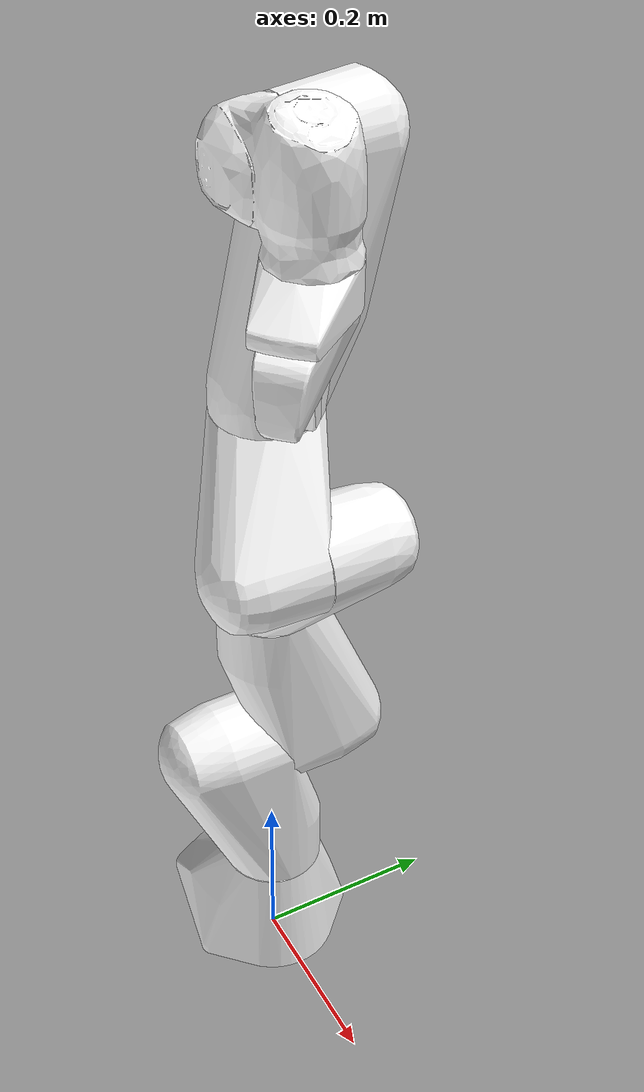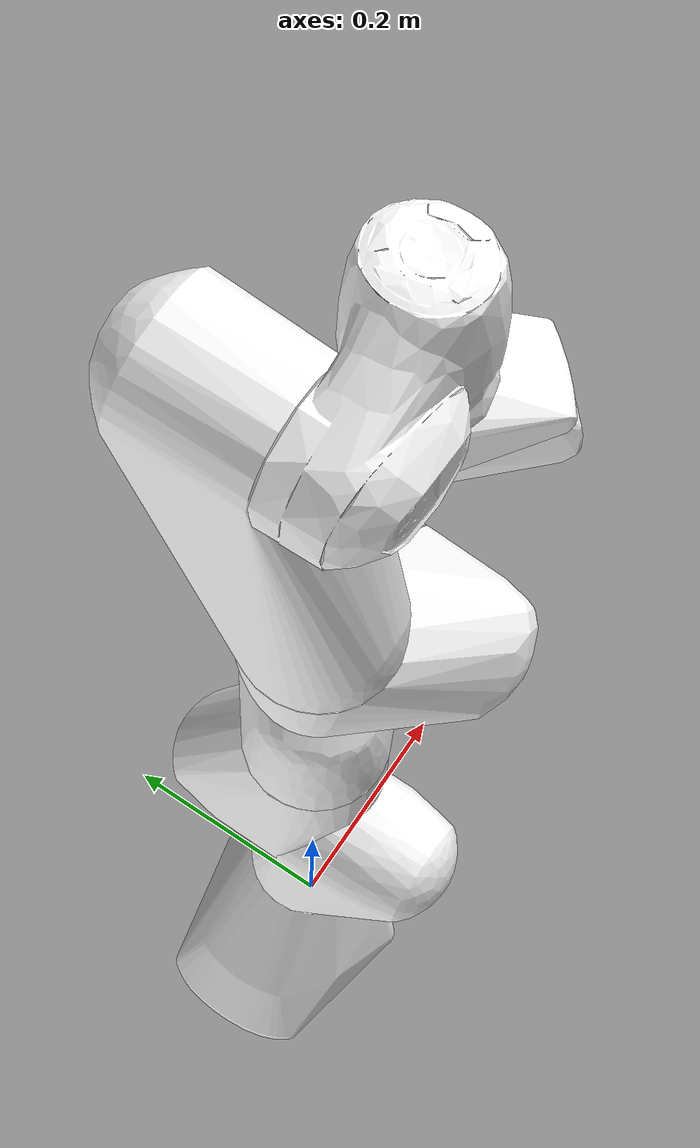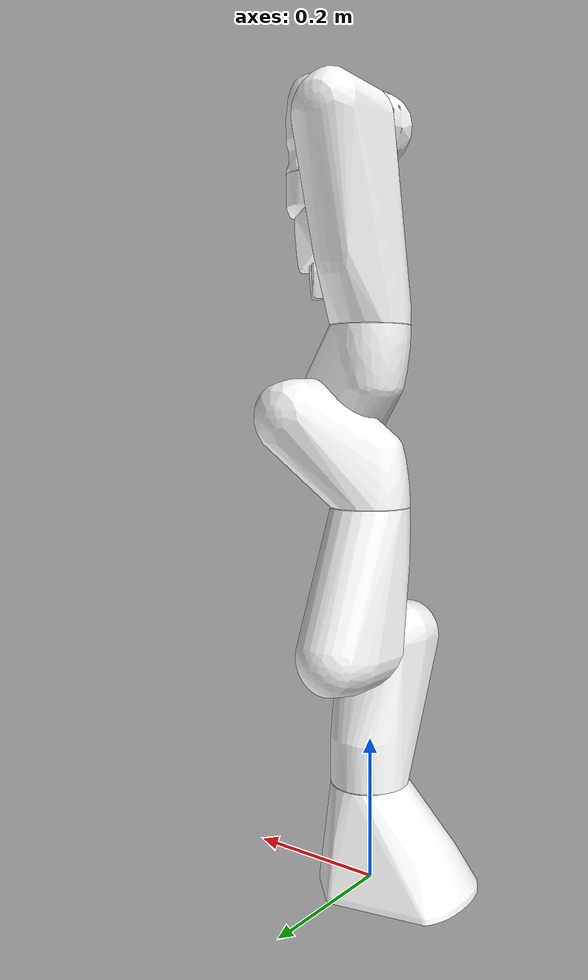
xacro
<?xml version="1.0"?>
<robot xmlns:xacro="http://www.ros.org/wiki/xacro" name="panda">

  <!-- Include Franka description -->
  <xacro:include filename="$(find franka_description)/robots/panda/panda.urdf.xacro"/>

  <!-- Gazebo ros2_control plugin -->
  <gazebo>
    <plugin filename="gz_ros2_control-system" name="gz_ros2_control::GazeboSimROS2ControlPlugin">
      <robot_param>robot_description</robot_param>
      <robot_param_node>robot_state_publisher</robot_param_node>
      <parameters>$(find panda_gz_moveit)/config/panda_controllers.yaml</parameters>
    </plugin>
  </gazebo>

  <!-- ros2_control -->
  <ros2_control name="panda_gz" type="system">
    <hardware>
      <plugin>gz_ros2_control/GazeboSimSystem</plugin>
    </hardware>

    <!-- Arm joints -->
    <joint name="panda_joint1">
      <command_interface name="position"/>
      <state_interface name="position">
        <param name="initial_value">0.0</param>
      </state_interface>
      <state_interface name="velocity"/>
    </joint>

    <joint name="panda_joint2">
      <command_interface name="position"/>
      <state_interface name="position">
        <param name="initial_value">-0.785</param>
      </state_interface>
      <state_interface name="velocity"/>
    </joint>

    <joint name="panda_joint3">
      <command_interface name="position"/>
      <state_interface name="position">
        <param name="initial_value">0.0</param>
      </state_interface>
      <state_interface name="velocity"/>
    </joint>

    <joint name="panda_joint4">
      <command_interface name="position"/>
      <state_interface name="position">
        <param name="initial_value">-2.356</param>
      </state_interface>
      <state_interface name="velocity"/>
    </joint>

    <joint name="panda_joint5">
      <command_interface name="position"/>
      <state_interface name="position">
        <param name="initial_value">0.0</param>
      </state_interface>
      <state_interface name="velocity"/>
    </joint>

    <joint name="panda_joint6">
      <command_interface name="position"/>
      <state_interface name="position">
        <param name="initial_value">1.571</param>
      </state_interface>
      <state_interface name="velocity"/>
    </joint>

    <joint name="panda_joint7">
      <command_interface name="position"/>
      <state_interface name="position">
        <param name="initial_value">0.785</param>
      </state_interface>
      <state_interface name="velocity"/>
    </joint>

    <!-- Gripper joints -->
    <joint name="panda_finger_joint1">
      <command_interface name="position"/>
      <state_interface name="position">
        <param name="initial_value">0.04</param>
      </state_interface>
      <state_interface name="velocity"/>
    </joint>

    <joint name="panda_finger_joint2">
      <command_interface name="position"/>
      <state_interface name="position">
        <param name="initial_value">0.04</param>
      </state_interface>
      <state_interface name="velocity"/>
    </joint>

  </ros2_control>

  <!-- Gazebo materials for visualization -->
  <gazebo reference="panda_link0">
    <material>Gazebo/White</material>
  </gazebo>

  <gazebo reference="panda_link1">
    <material>Gazebo/White</material>
  </gazebo>

  <gazebo reference="panda_link2">
    <material>Gazebo/White</material>
  </gazebo>

  <gazebo reference="panda_link3">
    <material>Gazebo/White</material>
  </gazebo>

  <gazebo reference="panda_link4">
    <material>Gazebo/White</material>
  </gazebo>

  <gazebo reference="panda_link5">
    <material>Gazebo/White</material>
  </gazebo>

  <gazebo reference="panda_link6">
    <material>Gazebo/Orange</material>
  </gazebo>

  <gazebo reference="panda_link7">
    <material>Gazebo/White</material>
  </gazebo>

  <gazebo reference="panda_hand">
    <material>Gazebo/Grey</material>
  </gazebo>

</robot>

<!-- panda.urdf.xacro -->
<robot xmlns:xacro="http://www.ros.org/wiki/xacro" name="panda">
    <xacro:arg name="initial_positions_file" default="initial_positions.yaml" />

    <!-- Import panda urdf file -->
    <xacro:include filename="$(find panda_gz_moveit)/urdf/panda_arm.urdf" />

    <!-- Import control_xacro -->
    <xacro:include filename="panda.ros2_control.xacro" />

    <xacro:panda_ros2_control name="FakeSystem" initial_positions_file="$(arg initial_positions_file)"/>

</robot>

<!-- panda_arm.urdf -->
<robot name="panda">
<link name="world"/>

<joint name="world_to_panda" type="fixed">
  <parent link="world"/>
  <child link="panda_link0"/>
  <origin xyz="0 0 0" rpy="0 0 0"/>
</joint>

  <link name="panda_link0">
    <inertial>
      <mass value="100.0" />
      <origin xyz="0 0 -0.05" rpy="0 0 0" />
      <inertia ixx="1.0" ixy="0" ixz="0" iyy="1.0" iyz="0" izz="1.0" />
    </inertial>
    <visual>
      <geometry>
        <mesh filename="file:///workspace/install/panda_gz_moveit/share/panda_gz_moveit/meshes/collision/link0.obj" />
      </geometry>
      <material name="panda_white" />
    </visual>
    <collision>
      <geometry>
        <mesh filename="file:///workspace/install/panda_gz_moveit/share/panda_gz_moveit/meshes/collision/link0.obj" />
      </geometry>
      <material name="panda_white" />
      <surface>
        <friction>
          <ode>
            <mu>100.0</mu>
            <mu2>100.0</mu2>
          </ode>
        </friction>
      </surface>
    </collision>
  </link>

  <link name="panda_link1">
    <inertial><mass value="4.0" /><origin xyz="0 0 0" rpy="0 0 0" /><inertia ixx="0.01" ixy="0" ixz="0" iyy="0.01" iyz="0" izz="0.01" /></inertial>
    <visual>
      <geometry>
        <mesh filename="file:///workspace/install/panda_gz_moveit/share/panda_gz_moveit/meshes/collision/link1.obj" />
      </geometry>
      <material name="panda_white" />
    </visual>
    <collision>
      <geometry>
        <mesh filename="file:///workspace/install/panda_gz_moveit/share/panda_gz_moveit/meshes/collision/link1.obj" />
      </geometry>
      <material name="panda_white" />
    </collision>
  </link>

  <joint name="panda_joint1" type="revolute">
    <safety_controller k_position="100.0" k_velocity="40.0" soft_lower_limit="-2.8973" soft_upper_limit="2.8973" />
    <origin rpy="0 0 0" xyz="0 0 0.333" />
    <parent link="panda_link0" />
    <child link="panda_link1" />
    <axis xyz="0 0 1" />
    <limit effort="87" lower="-2.9671" upper="2.9671" velocity="2.1750" />
    <dynamics damping="10.0" friction="1.0"/>
  </joint>

  <link name="panda_link2">
    <inertial><mass value="4.0" /><origin xyz="0 0 0" rpy="0 0 0" /><inertia ixx="0.01" ixy="0" ixz="0" iyy="0.01" iyz="0" izz="0.01" /></inertial>
    <visual>
      <geometry>
        <mesh filename="file:///workspace/install/panda_gz_moveit/share/panda_gz_moveit/meshes/collision/link2.obj" />
      </geometry>
      <material name="panda_white" />
    </visual>
    <collision>
      <geometry>
        <mesh filename="file:///workspace/install/panda_gz_moveit/share/panda_gz_moveit/meshes/collision/link2.obj" />
      </geometry>
      <material name="panda_white" />
    </collision>
  </link>

  <joint name="panda_joint2" type="revolute">
    <safety_controller k_position="100.0" k_velocity="40.0" soft_lower_limit="-1.7628" soft_upper_limit="1.7628" />
    <origin rpy="-1.57079632679 0 0" xyz="0 0 0" />
    <parent link="panda_link1" />
    <child link="panda_link2" />
    <axis xyz="0 0 1" />
    <limit effort="87" lower="-1.8326" upper="1.8326" velocity="2.1750" />
    <dynamics damping="10.0" friction="1.0"/>
  </joint>

  <link name="panda_link3">
    <inertial><mass value="3.0" /><origin xyz="0 0 0" rpy="0 0 0" /><inertia ixx="0.01" ixy="0" ixz="0" iyy="0.01" iyz="0" izz="0.01" /></inertial>
    <visual>
      <geometry>
        <mesh filename="file:///workspace/install/panda_gz_moveit/share/panda_gz_moveit/meshes/collision/link3.obj" />
      </geometry>
      <material name="panda_white" />
    </visual>
    <collision>
      <geometry>
        <mesh filename="file:///workspace/install/panda_gz_moveit/share/panda_gz_moveit/meshes/collision/link3.obj" />
      </geometry>
      <material name="panda_white" />
    </collision>
  </link>

  <joint name="panda_joint3" type="revolute">
    <safety_controller k_position="100.0" k_velocity="40.0" soft_lower_limit="-2.8973" soft_upper_limit="2.8973" />
    <origin rpy="1.57079632679 0 0" xyz="0 -0.316 0" />
    <parent link="panda_link2" />
    <child link="panda_link3" />
    <axis xyz="0 0 1" />
    <limit effort="87" lower="-2.9671" upper="2.9671" velocity="2.1750" />
    <dynamics damping="10.0" friction="1.0"/>
  </joint>

  <link name="panda_link4">
    <inertial><mass value="3.0" /><origin xyz="0 0 0" rpy="0 0 0" /><inertia ixx="0.01" ixy="0" ixz="0" iyy="0.01" iyz="0" izz="0.01" /></inertial>
    <visual>
      <geometry>
        <mesh filename="file:///workspace/install/panda_gz_moveit/share/panda_gz_moveit/meshes/collision/link4.obj" />
      </geometry>
      <material name="panda_white" />
    </visual>
    <collision>
      <geometry>
        <mesh filename="file:///workspace/install/panda_gz_moveit/share/panda_gz_moveit/meshes/collision/link4.obj" />
      </geometry>
      <material name="panda_white" />
    </collision>
  </link>

  <joint name="panda_joint4" type="revolute">
    <safety_controller k_position="100.0" k_velocity="40.0" soft_lower_limit="-3.0718" soft_upper_limit="-0.0698" />
    <origin rpy="1.57079632679 0 0" xyz="0.0825 0 0" />
    <parent link="panda_link3" />
    <child link="panda_link4" />
    <axis xyz="0 0 1" />
    <limit effort="87" lower="-3.1416" upper="0.0" velocity="2.1750" />
    <dynamics damping="10.0" friction="1.0"/>
  </joint>

  <link name="panda_link5">
    <inertial><mass value="2.0" /><origin xyz="0 0 0" rpy="0 0 0" /><inertia ixx="0.01" ixy="0" ixz="0" iyy="0.01" iyz="0" izz="0.01" /></inertial>
    <visual>
      <geometry>
        <mesh filename="file:///workspace/install/panda_gz_moveit/share/panda_gz_moveit/meshes/collision/link5.obj" />
      </geometry>
      <material name="panda_white" />
    </visual>
    <collision>
      <geometry>
        <mesh filename="file:///workspace/install/panda_gz_moveit/share/panda_gz_moveit/meshes/collision/link5.obj" />
      </geometry>
      <material name="panda_white" />
    </collision>
  </link>

  <joint name="panda_joint5" type="revolute">
    <safety_controller k_position="100.0" k_velocity="40.0" soft_lower_limit="-2.8973" soft_upper_limit="2.8973" />
    <origin rpy="-1.57079632679 0 0" xyz="-0.0825 0.384 0" />
    <parent link="panda_link4" />
    <child link="panda_link5" />
    <axis xyz="0 0 1" />
    <limit effort="12" lower="-2.9671" upper="2.9671" velocity="2.6100" />
    <dynamics damping="10.0" friction="1.0"/>
  </joint>

  <link name="panda_link6">
    <inertial><mass value="2.0" /><origin xyz="0 0 0" rpy="0 0 0" /><inertia ixx="0.01" ixy="0" ixz="0" iyy="0.01" iyz="0" izz="0.01" /></inertial>
    <visual>
      <geometry>
        <mesh filename="file:///workspace/install/panda_gz_moveit/share/panda_gz_moveit/meshes/collision/link6.obj" />
      </geometry>
      <material name="panda_white" />
    </visual>
    <collision>
      <geometry>
        <mesh filename="file:///workspace/install/panda_gz_moveit/share/panda_gz_moveit/meshes/collision/link6.obj" />
      </geometry>
      <material name="panda_white" />
    </collision>
  </link>

  <joint name="panda_joint6" type="revolute">
    <safety_controller k_position="100.0" k_velocity="40.0" soft_lower_limit="-0.0175" soft_upper_limit="3.7525" />
    <origin rpy="1.57079632679 0 0" xyz="0 0 0" />
    <parent link="panda_link5" />
    <child link="panda_link6" />
    <axis xyz="0 0 1" />
    <limit effort="12" lower="-0.0873" upper="3.8223" velocity="2.6100" />
    <dynamics damping="10.0" friction="1.0"/>
  </joint>

  <link name="panda_link7">
    <inertial><mass value="1.0" /><origin xyz="0 0 0" rpy="0 0 0" /><inertia ixx="0.01" ixy="0" ixz="0" iyy="0.01" iyz="0" izz="0.01" /></inertial>
    <visual>
      <geometry>
        <mesh filename="file:///workspace/install/panda_gz_moveit/share/panda_gz_moveit/meshes/collision/link7.obj" />
      </geometry>
      <material name="panda_white" />
    </visual>
    <collision>
      <geometry>
        <mesh filename="file:///workspace/install/panda_gz_moveit/share/panda_gz_moveit/meshes/collision/link7.obj" />
      </geometry>
      <material name="panda_white" />
    </collision>
  </link>

  <joint name="panda_joint7" type="revolute">
    <safety_controller k_position="100.0" k_velocity="40.0" soft_lower_limit="-2.8973" soft_upper_limit="2.8973" />
    <origin rpy="1.57079632679 0 0" xyz="0.088 0 0" />
    <parent link="panda_link6" />
    <child link="panda_link7" />
    <axis xyz="0 0 1" />
    <limit effort="12" lower="-2.9671" upper="2.9671" velocity="2.6100" />
    <dynamics damping="10.0" friction="1.0"/>
  </joint>

  <link name="panda_link8">
    <inertial><mass value="0.01" /><origin xyz="0 0 0" rpy="0 0 0" /><inertia ixx="0.01" ixy="0" ixz="0" iyy="0.01" iyz="0" izz="0.01" /></inertial>
  </link>

  <joint name="panda_joint8" type="fixed">
    <origin rpy="0 0 0" xyz="0 0 0.107" />
    <parent link="panda_link7" />
    <child link="panda_link8" />
    <axis xyz="0 0 0" />
  </joint>

  <joint name="panda_hand_joint" type="fixed">
    <parent link="panda_link8" />
    <child link="panda_hand" />
    <origin rpy="0 0 -0.785398163397" xyz="0 0 0" />
  </joint>

  <link name="panda_hand">
    <inertial><mass value="0.8" /><origin xyz="0 0 0" rpy="0 0 0" /><inertia ixx="0.01" ixy="0" ixz="0" iyy="0.01" iyz="0" izz="0.01" /></inertial>
    <visual>
      <geometry>
        <mesh filename="file:///workspace/install/panda_gz_moveit/share/panda_gz_moveit/meshes/collision/hand.obj" />
      </geometry>
      <material name="panda_white" />
    </visual>
    <collision>
      <geometry>
        <mesh filename="file:///workspace/install/panda_gz_moveit/share/panda_gz_moveit/meshes/collision/hand.obj" />
      </geometry>
      <material name="panda_white" />
    </collision>
  </link>

  <link name="panda_leftfinger">
    <inertial><mass value="0.05" /><origin xyz="0 0 0" rpy="0 0 0" /><inertia ixx="0.01" ixy="0" ixz="0" iyy="0.01" iyz="0" izz="0.01" /></inertial>
    <visual>
      <geometry>
        <mesh filename="file:///workspace/install/panda_gz_moveit/share/panda_gz_moveit/meshes/collision/finger.obj" />
      </geometry>
      <material name="panda_white" />
    </visual>
    <collision>
      <geometry>
        <mesh filename="file:///workspace/install/panda_gz_moveit/share/panda_gz_moveit/meshes/collision/finger.obj" />
      </geometry>
      <material name="panda_white" />
    </collision>
  </link>

  <link name="panda_rightfinger">
    <inertial><mass value="0.05" /><origin xyz="0 0 0" rpy="0 0 0" /><inertia ixx="0.01" ixy="0" ixz="0" iyy="0.01" iyz="0" izz="0.01" /></inertial>
    <visual>
      <origin rpy="0 0 3.14159265359" xyz="0 0 0" />
      <geometry>
        <mesh filename="file:///workspace/install/panda_gz_moveit/share/panda_gz_moveit/meshes/collision/finger.obj" />
      </geometry>
      <material name="panda_white" />
    </visual>
    <collision>
      <origin rpy="0 0 3.14159265359" xyz="0 0 0" />
      <geometry>
        <mesh filename="file:///workspace/install/panda_gz_moveit/share/panda_gz_moveit/meshes/collision/finger.obj" />
      </geometry>
      <material name="panda_white" />
    </collision>
  </link>

  <joint name="panda_finger_joint1" type="prismatic">
    <parent link="panda_hand" />
    <child link="panda_leftfinger" />
    <origin rpy="0 0 0" xyz="0 0 0.0584" />
    <axis xyz="0 1 0" />
    <limit effort="20" lower="0.0" upper="0.04" velocity="0.2" />
    <dynamics damping="5.0" friction="0.5"/>
  </joint>

  <joint name="panda_finger_joint2" type="prismatic">
    <parent link="panda_hand" />
    <child link="panda_rightfinger" />
    <origin rpy="0 0 0" xyz="0 0 0.0584" />
    <axis xyz="0 -1 0" />
    <limit effort="20" lower="0.0" upper="0.04" velocity="0.2" />
    <dynamics damping="5.0" friction="0.5"/>
    <mimic joint="panda_finger_joint1" />
  </joint>

  <material name="panda_white">
    <color rgba="1. 1. 1. 1." />
  </material>
  <gazebo>
    <plugin filename="gz-sim-joint-state-publisher-system"
            name="gz::sim::systems::JointStatePublisher">
      <topic>/world/panda_grasp_world/model/panda/joint_state</topic>
      <joint_name>panda_joint1</joint_name>
      <joint_name>panda_joint2</joint_name>
      <joint_name>panda_joint3</joint_name>
      <joint_name>panda_joint4</joint_name>
      <joint_name>panda_joint5</joint_name>
      <joint_name>panda_joint6</joint_name>
      <joint_name>panda_joint7</joint_name>
    </plugin>
  </gazebo>

<gazebo>
  <plugin filename="gz-sim-joint-position-controller-system"
          name="gz::sim::systems::JointPositionController">
    <joint_name>panda_joint1</joint_name>
    <topic>/panda_joint1_cmd</topic>
    <p_gain>1000</p_gain> <i_gain>0.1</i_gain>   <d_gain>10</d_gain>    <i_max>1</i_max>
    <i_min>-1</i_min>
    <cmd_max>1000</cmd_max>
    <cmd_min>-1000</cmd_min>
  </plugin>
</gazebo>

<gazebo>
  <plugin filename="gz-sim-joint-position-controller-system"
          name="gz::sim::systems::JointPositionController">
    <joint_name>panda_joint2</joint_name>
    <topic>/panda_joint2_cmd</topic>
    <p_gain>1000</p_gain> <i_gain>0.1</i_gain>   <d_gain>10</d_gain>    <i_max>1</i_max>
    <i_min>-1</i_min>
    <cmd_max>1000</cmd_max>
    <cmd_min>-1000</cmd_min>
  </plugin>
</gazebo>
<gazebo>
  <plugin filename="gz-sim-joint-position-controller-system"
          name="gz::sim::systems::JointPositionController">
    <joint_name>panda_joint3</joint_name>
    <topic>/panda_joint3_cmd</topic>
    <p_gain>1000</p_gain> <i_gain>0.1</i_gain>   <d_gain>10</d_gain>    <i_max>1</i_max>
    <i_min>-1</i_min>
    <cmd_max>1000</cmd_max>
    <cmd_min>-1000</cmd_min>
  </plugin>
</gazebo>
<gazebo>
    <plugin filename="gz-sim-joint-position-controller-system"
            name="gz::sim::systems::JointPositionController">
      <joint_name>panda_joint4</joint_name>
      <topic>/panda_joint4_cmd</topic>
      <p_gain>1000</p_gain> <i_gain>0.1</i_gain> <d_gain>10</d_gain>
      <i_max>1</i_max> <i_min>-1</i_min>
      <cmd_max>1000</cmd_max> <cmd_min>-1000</cmd_min>
    </plugin>
  </gazebo>

  <gazebo>
    <plugin filename="gz-sim-joint-position-controller-system"
            name="gz::sim::systems::JointPositionController">
      <joint_name>panda_joint5</joint_name>
      <topic>/panda_joint5_cmd</topic>
      <p_gain>1000</p_gain> <i_gain>0.1</i_gain> <d_gain>10</d_gain>
      <i_max>1</i_max> <i_min>-1</i_min>
      <cmd_max>1000</cmd_max> <cmd_min>-1000</cmd_min>
    </plugin>
  </gazebo>

  <gazebo>
    <plugin filename="gz-sim-joint-position-controller-system"
            name="gz::sim::systems::JointPositionController">
      <joint_name>panda_joint6</joint_name>
      <topic>/panda_joint6_cmd</topic>
      <p_gain>1000</p_gain> <i_gain>0.1</i_gain> <d_gain>10</d_gain>
      <i_max>1</i_max> <i_min>-1</i_min>
      <cmd_max>1000</cmd_max> <cmd_min>-1000</cmd_min>
    </plugin>
  </gazebo>

  <gazebo>
    <plugin filename="gz-sim-joint-position-controller-system"
            name="gz::sim::systems::JointPositionController">
      <joint_name>panda_joint7</joint_name>
      <topic>/panda_joint7_cmd</topic>
      <p_gain>1000</p_gain> <i_gain>0.1</i_gain> <d_gain>10</d_gain>
      <i_max>1</i_max> <i_min>-1</i_min>
      <cmd_max>1000</cmd_max> <cmd_min>-1000</cmd_min>
    </plugin>
  </gazebo>

  <gazebo>
    <plugin filename="gz-sim-joint-position-controller-system"
            name="gz::sim::systems::JointPositionController">
      <joint_name>panda_finger_joint1</joint_name>
      <topic>/panda_finger_joint1_cmd</topic>
      <p_gain>50</p_gain> <i_gain>0.0</i_gain> <d_gain>5</d_gain>
      <cmd_max>100</cmd_max> <cmd_min>-100</cmd_min>
    </plugin>
  </gazebo>

  <gazebo>
    <plugin filename="gz-sim-joint-position-controller-system"
            name="gz::sim::systems::JointPositionController">
      <joint_name>panda_finger_joint2</joint_name>
      <topic>/panda_finger_joint2_cmd</topic>
      <p_gain>50</p_gain> <i_gain>0.0</i_gain> <d_gain>5</d_gain>
      <cmd_max>100</cmd_max> <cmd_min>-100</cmd_min>
    </plugin>
  </gazebo>

</robot>
